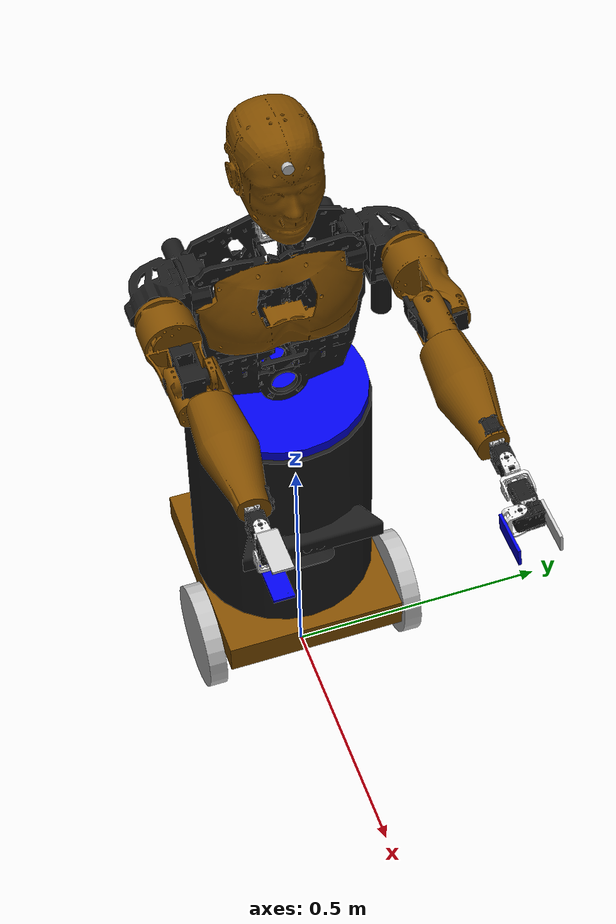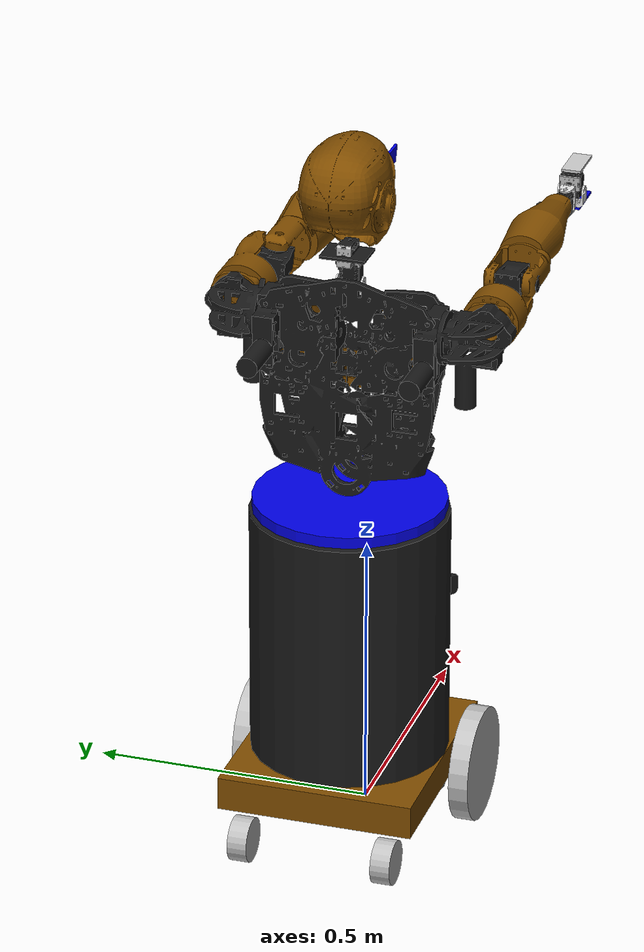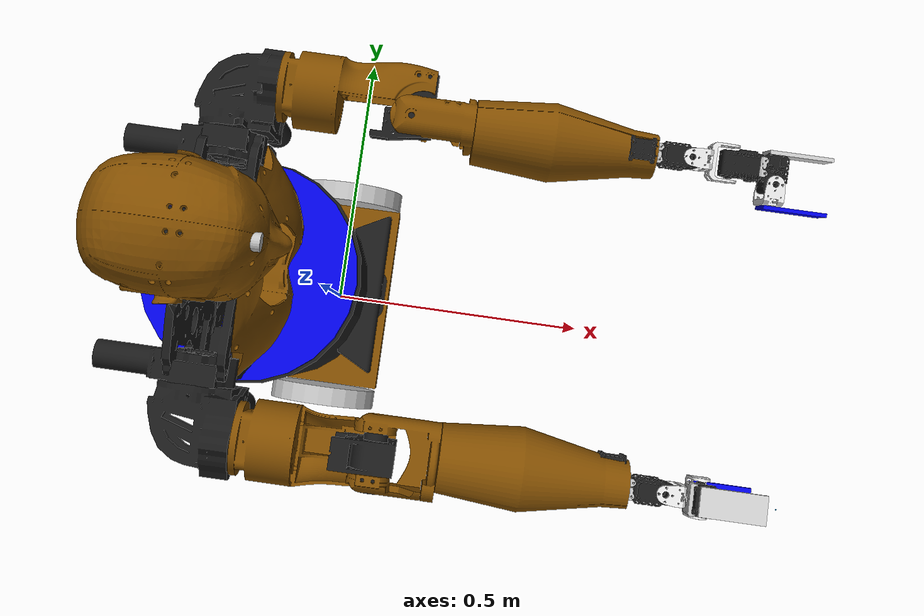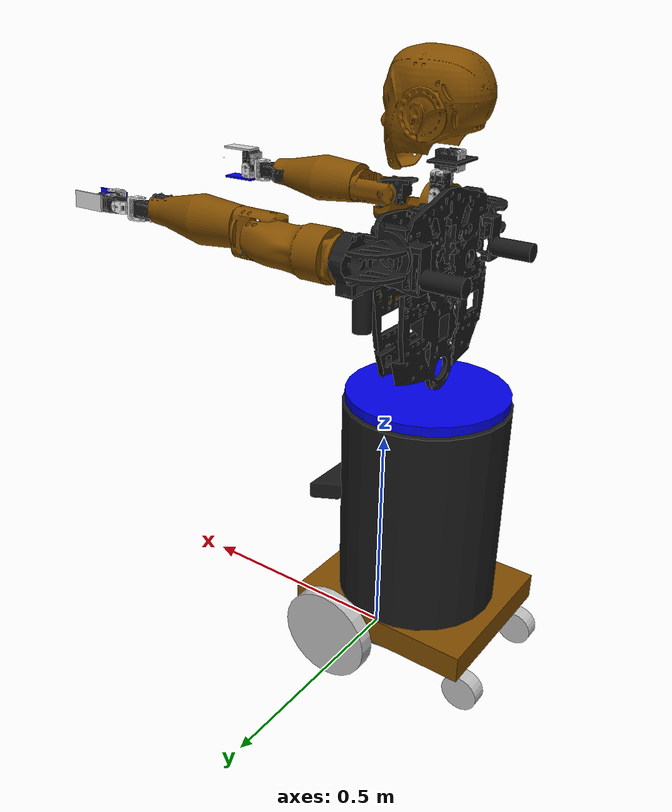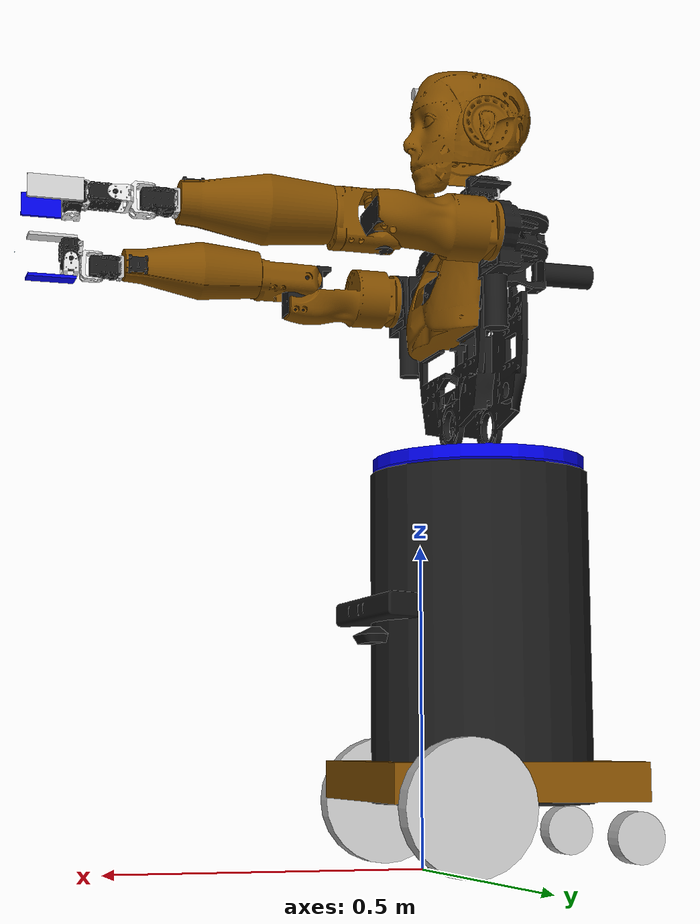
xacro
<?xml version="1.0"?>

<!-- XML namespaces -->
<robot xmlns:sensor="http://playerstage.sourceforge.net/gazebo/xmlschema/#sensor"
       xmlns:controller="http://playerstage.sourceforge.net/gazebo/xmlschema/#controller"
       xmlns:interface="http://playerstage.sourceforge.net/gazebo/xmlschema/#interface"
       xmlns:xacro="http://ros.org/wiki/xacro"

	   name="robbie">

    <property name="M_PI" value="3.14159"/>
    <property name="M_SCALE" value="0.001"/>
    <property name="MESH_EXT" value="stl"/>
    <xacro:include filename="$(find robbie_description)/urdf/robbie_hardware.xacro" />

<xacro:my_box name="base_link" lwh="0.41 0.35 0.06" xyz="0 0 .135" rpy="0 0 0" mass="0.1" material="Gazebo/FlatBlack">
	        <xacro:gold />
        </xacro:my_box>

 <link name="base_footprint">
      <visual>
        <origin xyz="0 0 0" rpy="0 0 0" />
        <geometry>
          <box size="0.05 0.05 0.001" />
        </geometry>
        <material name="TransparentGreen" />
      </visual>
  </link>

  <xacro:my_cylinder name="left_wheel" l="0.035" r="0.1025" xyz="0 0 0" rpy="1.57 0 0" mass="0.1" material="Gazebo/Grey">
		<xacro:grey1 />
	</xacro:my_cylinder>

  <xacro:my_cylinder name="right_wheel" l="0.035" r="0.1025" xyz="0 0 0" rpy="1.57 0 0" mass="0.1" material="Gazebo/Grey">
		<xacro:grey1 />
	</xacro:my_cylinder>

  <xacro:my_cylinder name="castor_wheel_l" l="0.035" r="0.04" xyz="0 0 0" rpy="1.57 0 0" mass="0.1" material="Gazebo/Grey">
		<xacro:grey1 />
	</xacro:my_cylinder>

  <xacro:my_cylinder name="castor_wheel_r" l="0.035" r="0.04" xyz="0 0 0" rpy="1.57 0 0" mass="0.1" material="Gazebo/Grey">
		<xacro:grey1 />
	</xacro:my_cylinder>

  <xacro:my_cylinder name="deck_link" l="0.520" r="0.175" xyz="0.1 0 0" rpy="0 0 0" mass="0.2" material="Gazebo/grey">
			<xacro:black />
		</xacro:my_cylinder>

 <xacro:my_cylinder name="pan_link" l="0.02" r="0.17" xyz="0 0 0" rpy="0 0 0" mass="0.2" material="Gazebo/grey">
			<xacro:blue1 />
		</xacro:my_cylinder>

<!-- ##############################   upper torso   ##################333333-->

<link name="upper_torso" >
   <visual>
      <geometry>
        <mesh filename="package://robbie_description/meshes/chest.stl" scale="${M_SCALE} ${M_SCALE} ${M_SCALE}"/>
      </geometry>
         <xacro:black/>
      <origin rpy="0 0 -1.57" xyz="0 0 0"/>
    </visual>
  </link>

<link name="upper_chest" >
   <visual>
      <geometry>
        <mesh filename="package://robbie_description/meshes/chest_cover.stl" scale="${M_SCALE} ${M_SCALE} ${M_SCALE}"/>
      </geometry>
         <xacro:gold/>
      <origin rpy="0 0 1.57" xyz="0 0 0"/>
    </visual>
  </link>

<!-- ##############################   right arm ##################333333-->
<link name="right_shoulder_tilt" >
   <visual>
      <geometry>
        <mesh filename="package://robbie_description/meshes/right_shoulder_tilt_assy.stl" scale="${M_SCALE} ${M_SCALE} ${M_SCALE}"/>
      </geometry>
       <xacro:black />
      <origin rpy="0 0 1.57" xyz="0 -0.05 -0.05"/>
    </visual>
  </link>

<link name="right_shoulder_lift" >
   <visual>
      <geometry>
        <mesh filename="package://robbie_description/meshes/right_shoulder_assy.stl" scale="${M_SCALE} ${M_SCALE} ${M_SCALE}"/>
      </geometry>
       <xacro:black />
      <origin rpy="0 0 1.57" xyz="-0.025 0 0.01"/>
    </visual>
  </link>

<link name="right_elbow_link" >
   <visual>
      <geometry>
        <mesh filename="package://robbie_description/meshes/gearbox.stl" scale="${M_SCALE} ${M_SCALE} ${M_SCALE}"/>
      </geometry>
       <xacro:black/>
      <origin rpy="0 1.57 0" xyz="0 0 0"/>
    </visual>
  </link>

  <link name="right_shoulder_rotate" >
   <visual>
      <geometry>
        <mesh filename="package://robbie_description/meshes/right_upper_arm.stl" scale="${M_SCALE} ${M_SCALE} ${M_SCALE}"/>
      </geometry>
       <xacro:gold/>
      <origin rpy="0 3.14 0" xyz="0 0 0"/>
    </visual>
  </link>

  <link name="right_elbow" >
   <visual>
      <geometry>
        <mesh filename="package://robbie_description/meshes/elbow_pivot.stl" scale="${M_SCALE} ${M_SCALE} ${M_SCALE}"/>
      </geometry>
       <xacro:gold />
      <origin rpy="3.14 0 0" xyz="0.025 -0.05 0.03"/>
    </visual>
  </link>

 <link name="right_forearm_link">
    <visual>
      <geometry>
        <mesh filename="package://robbie_description/meshes/fore_arm.stl" scale="${M_SCALE} ${M_SCALE} ${M_SCALE}"/>
      </geometry>
        <xacro:gold />
      <origin rpy="0 -1.57 0" xyz="0 0 0"/>
    </visual></link>

  <!-- wrist_pan_ joint-->
  <xacro:ax12 name="wrist_pan_servo" xyz="0 0 0" rpy="0 0 0" />
  <xacro:F3_bracket name="wrist_pan_servo_bracket_f3" xyz="0 0.005 0" rpy="1.57 0 0" />

  <!-- wrist_tilt joint-->
  <xacro:ax12 name="wrist_tilt_servo" xyz="-0.04 0.05 0" rpy="-1.57 0 0" />
  <xacro:F2_bracket name="wrist_tilt_bracket_f2" xyz="0 0 0" rpy="0 1.57 0" /><!--here-->

 <xacro:F3_bracket name="gripper_bracket_f3" xyz="0 0 0" rpy="1.57 1.57 0" />

<!-- Gripper_joint-->
  <xacro:ax12 name="gripper_servo" xyz="0 0 0" rpy="1.57 0 0" />
  <xacro:F2_bracket name="gripper_bracket_f2" xyz="0 0 0" rpy="0 0 1.57" />

  <xacro:my_box name="right_finger_link" lwh="-0.08 0.005 0.035" xyz="0 0 0" rpy="1.57 0 1.57" mass="0.1" material="Gazebo/FlatBlack">
	        <xacro:blue1 />
        </xacro:my_box>

  <xacro:my_box name="left_finger_link" lwh="0.08 0.005 0.035" xyz="0 0 0" rpy="1.57 0 1.57" mass="0.1" material="Gazebo/FlatBlack">
	        <xacro:grey3/>
        </xacro:my_box>

<!-- ##############################   left arm ##################333333-->
<link name="left_shoulder_tilt" >
   <visual>
      <geometry>
        <mesh filename="package://robbie_description/meshes/left_shoulder_tilt_assy.stl" scale="${M_SCALE} ${M_SCALE} ${M_SCALE}"/>
      </geometry>
       <xacro:black />
      <origin rpy="0 0 1.57" xyz="0 0.0 -0.0"/>
    </visual>
  </link>

  <link name="left_shoulder_lift" >
   <visual>
      <geometry>
        <mesh filename="package://robbie_description/meshes/left_shoulder_assy.stl" scale="${M_SCALE} ${M_SCALE} ${M_SCALE}"/>
      </geometry>
       <xacro:black />
      <origin rpy="0 0 1.57" xyz="0 0 0"/>
    </visual>
  </link>

<link name="left_shoulder_rotate" >
   <visual>
      <geometry>
        <mesh filename="package://robbie_description/meshes/right_upper_arm.stl" scale="${M_SCALE} ${M_SCALE} ${M_SCALE}"/>
      </geometry>
       <xacro:gold/>
      <origin rpy="0 3.14 0" xyz="0 0 0"/>
    </visual>
  </link>

<link name="left_elbow_link" >
   <visual>
      <geometry>
        <mesh filename="package://robbie_description/meshes/gearbox.stl" scale="${M_SCALE} ${M_SCALE} ${M_SCALE}"/>
      </geometry>
       <xacro:black/>
      <origin rpy="0 1.57 0" xyz="0 0 0"/>
    </visual>
  </link>

<link name="left_elbow" >
   <visual>
      <geometry>
        <mesh filename="package://robbie_description/meshes/elbow_pivot.stl" scale="${M_SCALE} ${M_SCALE} ${M_SCALE}"/>
      </geometry>
       <xacro:gold />
      <origin rpy="3.14 0 0" xyz="0.025 -0.05 0.03"/>
    </visual>
  </link>

 <link name="left_forearm_link">
    <visual>
      <geometry>
        <mesh filename="package://robbie_description/meshes/fore_arm.stl" scale="${M_SCALE} ${M_SCALE} ${M_SCALE}"/>
      </geometry>
        <xacro:gold />
      <origin rpy="0 -1.57 0" xyz="0 0 0"/>
    </visual>
  </link>

 <!-- left_wrist_pan_ joint-->
  <xacro:ax12 name="left_wrist_pan_servo" xyz="0 0 0" rpy="0 0 0" />
  <xacro:F3_bracket name="left_wrist_pan_servo_bracket_f3" xyz="0 0.005 0" rpy="1.57 0 0" />

 <!-- left_wrist_yaw joint-->
  <xacro:ax12 name="left_wrist_yaw_servo" xyz="-0.04 0.05 0" rpy="-1.57 0 0" />
  <xacro:F2_bracket name="left_wrist_yaw_bracket_f2" xyz="0 0 0" rpy="-1.57 0 0" />

  <!-- left_wrist_tilt joint-->
  <xacro:ax12 name="left_wrist_tilt_servo" xyz="0 0 0" rpy="1.57 1.57 0" />
  <xacro:F2_bracket name="left_wrist_tilt_bracket_f2" xyz="0 0 0" rpy="1.57 1.57 0" />

 <xacro:F3_bracket name="left_gripper_bracket_f3" xyz="0 0 0" rpy="1.57 1.57 0" />

<!-- left_Gripper_joint-->
  <xacro:ax12 name="left_gripper_servo" xyz="0 0 0" rpy="0 0 -1.57" />
  <xacro:F2_bracket name="left_gripper_bracket_f2" xyz="0 0 0" rpy="0 0 1.57" />

  <xacro:my_box name="left_right_finger_link" lwh="-0.08 0.005 0.035" xyz="0 0 0" rpy="1.57 0 1.57" mass="0.1" material="Gazebo/FlatBlack">
	        <xacro:blue1 />
        </xacro:my_box>

  <xacro:my_box name="left_left_finger_link" lwh="0.08 0.005 0.035" xyz="0 0 0" rpy="1.57 0 1.57" mass="0.1" material="Gazebo/FlatBlack">
	        <xacro:grey3/>
        </xacro:my_box>

<!-- head details-->
  <xacro:F2_bracket name="head_tilt_bracket" xyz="0 0 0" rpy="0 3.1415 0"/>

  <xacro:ax12 name="head_tilt_link" xyz="0 0 0" rpy="3.1415 0 0">
	</xacro:ax12>

  <xacro:F3_bracket name="head_pan_bracket" xyz="0 0 0" rpy="0 0 0"/>

  <xacro:ax12 name="head_pan_link" xyz="0 0 0" rpy=" 1.57 0 1.57">
	</xacro:ax12>

  <xacro:F3_bracket name="neck_link" xyz="0 0 0" rpy="1.57 0 -1.570" />

  <xacro:my_box name="head_base_link" lwh="0.06 0.08 0.005" xyz="0 0 0" rpy="0 0 0" mass="0.1" material="Gazebo/FlatBlack">
		<xacro:black />
	</xacro:my_box>

  <link name="head_link" >
   <visual>
      <geometry>
        <mesh filename="package://robbie_description/meshes/head.stl" scale="${M_SCALE} ${M_SCALE} ${M_SCALE}"/>
      </geometry>
         <material name="gold">
	  <color rgba="0.5 0.3 0 1.0"/>
	</material>
      <origin rpy="1.57 0 1.57" xyz="0 0 0"/>
    </visual>
  </link>

  <link name="head_link_fake">
      <inertial>
        <mass value="0.0001" />
        <origin xyz="0 0 0" />
        <inertia ixx="0.0001" ixy="0.0" ixz="0.0"
                 iyy="0.0001" iyz="0.0"
                 izz="0.0001" />
      </inertial>
    </link>

   <link name="kinect_link">
      <inertial>
        <mass value="1.0" />
        <origin xyz="0 0 0" />
        <inertia ixx="1.0" ixy="0.0" ixz="0.0"
                 iyy="1.0" iyz="0.0"
                 izz="1.0" />
      </inertial>

      <visual>
        <origin xyz=" 0 0 0 " rpy="0 0 0" />
        <geometry>
          <mesh filename="package://robbie_description/meshes/kinect.stl" scale="${M_SCALE} ${M_SCALE} ${M_SCALE}"/>
        </geometry>
        <xacro:ax12_color />
      </visual>

      <collision>
        <origin xyz="0 0 0" rpy="0 0 0" />
        <geometry>
          <mesh filename="package://robbie_description/meshes/kinect.stl" scale="${M_SCALE} ${M_SCALE} ${M_SCALE}"/>
          </geometry>
      </collision>

    </link>

    <xacro:my_cylinder name="camera_link" l="0.035" r="0.01" xyz="0 0 0" rpy="0 1.57 0" mass="0.1" material="Gazebo/Grey">
      <xacro:grey1 />
	</xacro:my_cylinder>

<!-- virtal joints-->
<link name="right_gripper_link">
    <visual>
      <origin rpy="0 0 0" xyz="0.05 0 0"/>
      <geometry>
        <box size="0.001 0.001 0.001"/>
      </geometry>
    </visual>
    <collision>
      <origin rpy="0 0 0" xyz="0.05 0 0"/>
      <geometry>
        <box size="0.001 0.001 0.001"/>
      </geometry>
    </collision>
  </link>
<link name="left_gripper_link">
    <visual>
      <origin rpy="0 0 0" xyz="-0.05 0 0"/>
      <geometry>
        <box size="0.001 0.001 0.001"/>
      </geometry>
    </visual>
    <collision>
      <origin rpy="0 0 0" xyz="-0.05 0 0"/>
      <geometry>
        <box size="0.001 0.001 0.001"/>
      </geometry>
    </collision>
  </link>

<!-- ##############################   joints ##################333333-->
<joint name="base_footprint_joint" type="fixed">
    	<parent link="base_footprint" />
    	<child link="base_link" />
    	<origin xyz="-0.1 0 0" rpy="0 0 0" />
	</joint>

<joint name="base_link_joint" type="fixed">
    	<parent link="base_link" />
    	<child link="deck_link" />
    	<origin xyz="-0.1 0 .36" rpy="0 0 0" />
	</joint>

  <joint name="left_wheel_joint" type="fixed">
    	<parent link="base_link" />
    	<child link="left_wheel" />
    	<origin xyz="0.1 -0.2 0.1" rpy="0 0 0" />
	</joint>

  <joint name="right_wheel_joint" type="fixed">
    	<parent link="base_link" />
    	<child link="right_wheel" />
    	<origin xyz="0.1 0.2 0.1" rpy="0 0 0" />
	</joint>

  <joint name="castor_wheel_joint_l" type="fixed">
    	<parent link="base_link" />
    	<child link="castor_wheel_l" />
    	<origin xyz="-0.20 -0.13 0.05" rpy="0 0 0" />
	</joint>

  <joint name="castor_wheel_joint_r" type="fixed">
    	<parent link="base_link" />
    	<child link="castor_wheel_r" />
    	<origin xyz="-0.20 0.13 0.05" rpy="0 0 0" />
	</joint>
<!--#################  Upper torso#############################-->
 <joint name="pan_joint" type="revolute">
    	<parent link="deck_link" />
    	<child link="pan_link" />
    	<origin xyz="0.1 0 0.275" rpy="0 0 0" />
        <axis xyz="0 0 1" />
        <limit lower="-1" upper="1" effort="10" velocity="0" />
	</joint>

  <joint name="torso_link" type="fixed">
    	<parent link="pan_link" />
    	<child link="upper_torso" />
    	<origin xyz="0.05 0 0.26" rpy="0 0 0" />
	</joint>

<joint name="chest_link" type="fixed">
    	<parent link="upper_torso" />
    	<child link="upper_chest" />
    	<origin xyz="0.02 0 0.03" rpy="0 0 0" />
	</joint>

<joint name="right_arm_tilt_joint" type="revolute">
    	<parent link="upper_torso" />
    	<child link="right_shoulder_tilt" />
    	<origin xyz="-0.045 -0.145 0.105" rpy="0 0 0" />
        <axis xyz="1 0 0" />
        <limit lower="-1.34" upper="0.1" effort="10" velocity="0" />
	</joint>

<joint name="right_arm_lift_joint" type="revolute">
    	<parent link="right_shoulder_tilt" />
    	<child link="right_shoulder_lift" />
    	<origin xyz="-0.0 -0.077 -0.04" rpy="0 -1.57 0" />
        <axis xyz="0 1 0" />
        <limit lower="-1.57" upper="1.57" effort="10" velocity="0" />
	</joint>

<joint name="right_arm_rotate_joint" type="revolute">
    	<parent link="right_shoulder_lift" />
    	<child link="right_shoulder_rotate" />
    	<origin xyz="0 0 -0.065" rpy="0 0 0" />
        <axis xyz="0 0 -1" />
        <limit lower="-3.14" upper="0.2" effort="10" velocity="0" />
	</joint>

<joint name="right_elbow_link" type="fixed">
    	<parent link="right_shoulder_rotate" />
    	<child link="right_elbow_link" />
    	<origin xyz="0.01 0 -0.17" rpy="0 0 0" />
        </joint>

<joint name="right_arm_elbow_joint" type="revolute">
    <parent link="right_elbow_link"/>
    <child link="right_elbow"/>
    <origin xyz="0.01 0.01 0.0" rpy="0 -1.57 0" />
    <axis xyz="0 1 0" />
   <limit lower="-2.20" upper="0.1" effort="10" velocity="0" />
  </joint>

  <joint name="right_arm_forearm_link" type="fixed">
    <parent link="right_elbow"/>
    <child link="right_forearm_link"/>
    <origin xyz="-0.08 -0.0 -0.0" rpy="1.57 0 0" />
  </joint>

  <!--right_arm_wrist_pan_joint-->
  <joint name="right_arm_wrist_pan_bracket" type="fixed">
    	<parent link="right_forearm_link" />
    	<child link="wrist_pan_servo" />
    	<origin xyz="-0.21 0.0 0.0" rpy="0 0 1.57" />

	</joint>
  <joint name="right_arm_wrist_pan_joint" type="revolute">
    	<parent link="wrist_pan_servo" />
    	<child link="wrist_pan_servo_bracket_f3" />
    	<origin xyz="0. 0.015 0.0" rpy="0 1.57 0" />
        <axis xyz="0 1 0" />
    	<limit lower="-2.61" upper="2.61" effort="10" velocity="0" />
      	<dynamics damping="0.0"/>
	</joint>

   <joint name="right_arm_wrist_tilt_bracket" type="fixed">
    	<parent link="wrist_pan_servo_bracket_f3" />
    	<child link="wrist_tilt_servo" />
    	<origin xyz="0.04 0 0.0" rpy="0 0 0" />
        <axis xyz="1 0 0" />

	</joint>

<!--wrist_tilt_joint-->
  <joint name="right_arm_wrist_yaw_joint" type="revolute">
    	<parent link="wrist_tilt_servo" />
    	<child link="wrist_tilt_bracket_f2" />
    	<origin xyz="-0.04 0.05 0" rpy="-1.57 0 1.57" />
        <axis xyz="0 1 0" />
    	<limit lower="-1.57" upper="1.57" effort="10" velocity="0" />
      	<dynamics damping="0.0"/>
	</joint>

  <joint name="right_arm_gripper_bracket" type="fixed">
    	<parent link="wrist_tilt_bracket_f2" />
    	<child link="gripper_bracket_f3" />
    	<origin xyz="0.025 0.025 0.0" rpy="1.57 1.57 0" /><!--now-->
	</joint>

   <joint name="right_arm_gripper_servo" type="fixed">
    	<parent link="gripper_bracket_f3" />
    	<child link="gripper_servo" />
    	<origin xyz="0.0 0.02 0.02" rpy="-1.57 0 1.57" />
	</joint>

  <joint name="right_gripper_joint" type="fixed">
    <origin rpy="-1.570795 0 1.570795" xyz="0 0.06 0.01"/>
    <parent link="gripper_bracket_f3"/>
    <child link="right_gripper_link"/>
  </joint>

<!-- gripper_joint-->
   <joint name="right_arm_gripper_joint" type="revolute">
    	<parent link="gripper_servo" />
    	<child link="gripper_bracket_f2" />
    	<origin xyz="0 0.0 0.0" rpy="0 1.57 -1.57" />
        <axis xyz="1 0 0" />
    	<limit lower="-0.36" upper="0.28" effort="10" velocity="0" />
      	<dynamics damping="0.0"/>
	</joint>

  <joint name="right_arm_finger_link_l" type="fixed">
    	<parent link="gripper_servo" />
    	<child link="left_finger_link" />
    	<origin xyz="0.03 0.04 0.0" rpy="0 1.57 -1.57" />

	</joint>
<!-- moving finger   ############-->
  <joint name="right_arm_finger_link_r" type="fixed">
    	<parent link="gripper_bracket_f2" />
    	<child link="right_finger_link" />
    	<origin xyz="0 0.03 0.03" rpy="0 0 0" />
	</joint>

<!--##########################        left arm             #############################-->
<joint name="left_arm_tilt_joint" type="revolute">
    	<parent link="upper_torso" />
    	<child link="left_shoulder_tilt" />
    	<origin xyz="-0.045 0.145 0.105" rpy="0 0 0" />
        <axis xyz="-1 0 0" />
        <limit lower="-1.34" upper="0.1" effort="10" velocity="0" />
	</joint>

<joint name="left_arm_lift_joint" type="revolute">
    	<parent link="left_shoulder_tilt" />
    	<child link="left_shoulder_lift" />
    	<origin xyz="0 0.02 -0.04" rpy="0 -1.57 0" />
        <axis xyz="0 1 0" />
        <limit lower="-1.57" upper="1.57" effort="10" velocity="0" />
	</joint>

<joint name="left_arm_rotate_joint" type="revolute">
    	<parent link="left_shoulder_lift" />
    	<child link="left_shoulder_rotate" />
    	<origin xyz="0 0.06 -0.055" rpy="0 0 0" />
        <axis xyz="0 0 -1" />
        <limit lower="0.2" upper="3.14" effort="10" velocity="0" />
	</joint>

<joint name="left_elbow_link" type="fixed">
    	<parent link="left_shoulder_rotate" />
    	<child link="left_elbow_link" />
    	<origin xyz="0.01 0 -0.17" rpy="0 0 0" />
	</joint>

<joint name="left_arm_elbow_joint" type="revolute">
    <parent link="left_elbow_link"/>
    <child link="left_elbow"/>
    <origin xyz="0.01 0.01 0.0" rpy="0 -1.57 0" />
    <axis xyz="0 1 0" />
   <limit lower="-2.20" upper="0.17" effort="10" velocity="0" />
  </joint>

 <joint name="left_arm_forearm_link" type="fixed">
    <parent link="left_elbow"/>
    <child link="left_forearm_link"/>
    <origin xyz="-0.08 -0.0 -0.0" rpy="1.57 0 0" />
  </joint>

    <!--left_arm_wrist_pan_joint-->
  <joint name="left_arm_wrist_pan_bracket" type="fixed">
    	<parent link="left_forearm_link" />
    	<child link="left_wrist_pan_servo" />
    	<origin xyz="-0.21 0.0 0.0" rpy="0 0 1.57" /><!--now-->

	</joint>
  <joint name="left_arm_wrist_pan_joint" type="revolute"> <!--revolute-->
    	<parent link="left_wrist_pan_servo" />
    	<child link="left_wrist_pan_servo_bracket_f3" />
    	<origin xyz="0. 0.015 0.0" rpy="0 0 0" />
        <axis xyz="0 1 0" />
    	<limit lower="-2.61" upper="2.61" effort="10" velocity="0" />
      	<dynamics damping="0.0"/>
	</joint>

   <joint name="left_arm_wrist_tilt_bracket" type="fixed">
    	<parent link="left_wrist_pan_servo_bracket_f3" />
    	<child link="left_wrist_yaw_servo" />
    	<origin xyz="0.04 0 0.0" rpy="0 0 0" />
        <axis xyz="1 0 0" />

	</joint>

<!--wrist_yaw_joint-->
  <joint name="left_arm_wrist_yaw_joint" type="revolute"> <!--revolute-->
    	<parent link="left_wrist_yaw_servo" />
    	<child link="left_wrist_yaw_bracket_f2" />
    	<origin xyz="-0.04 0.05 0" rpy="0 0 0" />
        <axis xyz="0 0 -1" />
    	<limit lower="-1.57" upper="1.57" effort="10" velocity="0" />
      	<dynamics damping="0.0"/>
	</joint>

  <joint name="left_arm_wrist_yaw_bracket" type="fixed">
    	<parent link="left_wrist_yaw_bracket_f2" />
    	<child link="left_wrist_tilt_bracket_f2" />
    	<origin xyz="-0.0 0.052 0.0" rpy="0 0 0" />
        <axis xyz="1 0 0" />
    	<limit lower="-1.57" upper="1.57" effort="10" velocity="0" />
      	<dynamics damping="0.0"/>
        </joint>

  <!--wrist_tilt_joint-->
  <joint name="left_arm_wrist_tilt_joint" type="revolute"> <!--revolute-->
    	<parent link="left_wrist_tilt_bracket_f2" />
    	<child link="left_wrist_tilt_servo" />
    	<origin xyz="-0 -0.0 0" rpy="0 0 0" />
        <axis xyz="1 0 0" />
    	<limit lower="-1.57" upper="1.57" effort="10" velocity="0" />
      	<dynamics damping="0.0"/>
	</joint>

  <joint name="left_arm_gripper_bracket" type="fixed">
    	<parent link="left_wrist_tilt_servo" />
    	<child link="left_gripper_bracket_f3" />
    	<origin xyz="0.0 0.035 0.0" rpy="0 1.57 0" />
	</joint>

   <joint name="left_arm_gripper_servo" type="fixed">
    	<parent link="left_gripper_bracket_f3" />
    	<child link="left_gripper_servo" />
    	<origin xyz="0.0 0.02 -0.02" rpy="0 3.14 0" />
	</joint>

  <joint name="left_gripper_joint" type="fixed">
    <origin rpy="1.570795 0 1.570795" xyz="0 0.06 -0.01"/>
    <parent link="left_gripper_bracket_f3"/>
    <child link="left_gripper_link"/>
  </joint>

  <!-- left gripper_joint-->
   <joint name="left_arm_gripper_joint" type="revolute"> <!--revolute-->
    	<parent link="left_gripper_servo" />
    	<child link="left_gripper_bracket_f2" />
    	<origin xyz="0 0.0 0.0" rpy="0 0 0" />
        <axis xyz="1 0 0" />
    	<limit lower="-1.0" upper="0.3" effort="10" velocity="0" />
      	<dynamics damping="0.0"/>
	</joint>

  <joint name="left_arm_finger_link_l" type="fixed">
    	<parent link="left_gripper_servo" />
    	<child link="left_left_finger_link" />
    	<origin xyz="0. 0.03 -0.04" rpy="0 0 0" />

	</joint>

  <joint name="left_arm_finger_link_r" type="fixed">
    	<parent link="left_gripper_bracket_f2" />
    	<child link="left_right_finger_link" />
    	<origin xyz="0 0.03 0.03" rpy="0 0 0" />
	</joint>

<!-- #####################################Head joints#########################################-->
  <joint name="head_tilt_servo" type="fixed">
    	<parent link="upper_torso" />
    	<child link="head_tilt_bracket" />
    	<origin xyz="-0.05 0. 0.15" rpy="0 0 0" />
	</joint>
<!-- Head tilt joint-->
  <joint name="head_tilt_mod_joint" type="revolute">
    	<parent link="head_tilt_bracket" />
    	<child link="head_tilt_link" />
    	<origin xyz="0 0 0.0" rpy="0 0 0" />
    	<axis xyz="0 1 0" />
    	<limit lower="-2.6" upper="2.6" effort="10" velocity="0" />
      	<dynamics damping="0.0"/>
	</joint>

<!-- Head tilt joint fake-->
  <joint name="head_tilt_joint" type="fixed">
    	<parent link="head_tilt_bracket" />
    	<child link="head_link_fake" />
    	<origin xyz="0 0 0.0" rpy="0 0 0" />
    	<axis xyz="0 1 0" />
    	<limit lower="-2.6" upper="2.6" effort="10" velocity="0" />
      	<dynamics damping="0.0"/>
	</joint>

  <joint name="head_pan_servo" type="fixed">
    	<parent link="head_tilt_link" />
    	<child link="head_pan_bracket" />
    	<origin xyz="-0.0 0 0.04" rpy="0 0 0" />
	</joint>

  <!-- head_pan_joint-->
	<joint name="head_pan_joint" type="revolute">
    	<parent link="head_pan_bracket" />
    	<child link="head_pan_link" />
    	<origin xyz="0.0 0 0.02" rpy="0 0 0" />
        <origin xyz="0 0 0.0" rpy="0 0 0" />
    	<axis xyz="0 0 1" />
    	<limit lower="-2" upper="2" effort="10" velocity="0" />
      	<dynamics damping="0.0"/>
	</joint>

  <joint name="head_neck_link" type="fixed">
    	<parent link="head_pan_link" />
    	<child link="neck_link" />
    	<origin xyz="-0.04 0 0.0" rpy="0 0 0" />
	</joint>

  <joint name="neck_joint" type="fixed">
    	<parent link="neck_link" />
    	<child link="head_base_link" />
    	<origin xyz="0.02 0 0.0" rpy="0 0 0" />
	</joint>

  <joint name="head_joint" type="fixed">
    	<parent link="head_base_link" />
    	<child link="head_link" />
    	<origin xyz="-0.02 -0.097 -0.45" rpy="0 0 0" />
	</joint>

   <joint name="camera_link" type="fixed">
    	<parent link="head_link" />
    	<child link="camera_link" />
    	<origin xyz="0.13 0.1 0.6" rpy="0 0 0" />
	</joint>

  <joint name="kinect_joint" type="fixed">
    	<parent link="base_link" />
    	<child link="kinect_link" />
    	<origin xyz="0.2 0 0.4" rpy="0 0 0" />
	</joint>

  <joint name="kinect_depth_joint" type="fixed">
      <origin xyz="0 0.018 0" rpy="0 0 0" />
      <parent link="kinect_link" />
      <child link="kinect_depth_frame" />
    </joint>

    <link name="kinect_depth_frame">
      <inertial>
        <mass value="0.0001" />
        <origin xyz="0 0 0" />
        <inertia ixx="0.0001" ixy="0.0" ixz="0.0"
                 iyy="0.0001" iyz="0.0"
                 izz="0.0001" />
      </inertial>
    </link>

    <joint name="kinect_depth_optical_joint" type="fixed">
      <origin xyz="0 0 0" rpy="${-M_PI/2} 0 ${-M_PI/2}" />
      <parent link="kinect_link" />
      <child link="kinect_depth_optical_frame" />
    </joint>

    <link name="kinect_depth_optical_frame">
      <inertial>
        <mass value="0.0001" />
        <origin xyz="0 0 0" />
        <inertia ixx="0.0001" ixy="0.0" ixz="0.0"
                 iyy="0.0001" iyz="0.0"
                 izz="0.0001" />
      </inertial>
    </link>

    <joint name="kinect_rgb_optical_joint" type="fixed">
      <origin xyz="0 0 0" rpy="${-M_PI/2} 0 ${-M_PI/2}" />
      <parent link="kinect_depth_optical_frame" />
      <child link="kinect_rgb_optical_frame" />
    </joint>
    <link name="kinect_rgb_optical_frame">
      <inertial>
        <mass value="0.001" />
        <origin xyz="0 0 0" />
        <inertia ixx="0.0001" ixy="0.0" ixz="0.0"
                 iyy="0.0001" iyz="0.0"
                 izz="0.0001" />
      </inertial>
    </link>

<gazebo reference="robbie">
  	</gazebo>
</robot>

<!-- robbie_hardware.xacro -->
<robot name="hector_base" xmlns:xacro="http://ros.org/wiki/xacro">

  <!-- ============================  A Few Color Macros  ============================ -->

	<xacro:macro name="black">
		<material name="black">
			<color rgba="0.1 0.1 0.1 1.0"/>
		</material>
	</xacro:macro>

	<xacro:macro name="white">
		<material name="white">
			<color rgba="1.0 1.0 1.0 1.0"/>
		</material>
	</xacro:macro>

	<xacro:macro name="grey1">
		<material name="grey1">
			<color rgba="0.75 0.75 0.75 1.0"/>
		</material>
	</xacro:macro>

	<xacro:macro name="grey2">
		<material name="grey2">
			<color rgba="0.6 0.6 0.6 1.0"/>
		</material>
	</xacro:macro>

	<xacro:macro name="grey3">
		<material name="grey3">
			<color rgba="0.8 0.8 0.8 1.0"/>
		</material>
	</xacro:macro>

	<xacro:macro name="ax12_color">
		<material name="ax12_color">
			<color rgba="0.2 0.2 0.2 1.0"/>
		</material>
	</xacro:macro>

	<xacro:macro name="bracket_color">
		<material name="bracket_color">
			<color rgba="0.9 0.9 0.9 1.0"/>
		</material>
	</xacro:macro>

        <xacro:macro name="cyan1">
		<material name="cyan1">
			<color rgba="0 0.9 0.9 1.0"/>
		</material>
	</xacro:macro>

	<xacro:macro name="cyan2">
		<material name="cyan2">
	     <color rgba="0 0.7 0.7 1.0"/>
		</material>
	</xacro:macro>

	<xacro:macro name="cyan3">
		<material name="cyan3">
	     <color rgba="0 0.5 0.5 1.0"/>
		</material>
	</xacro:macro>

        <xacro:macro name="yellow2">
		<material name="yellow2">
			<color rgba="0.8 0.9 0 1.0"/>
		</material>
	</xacro:macro>

        <xacro:macro name="gold">
		<material name="gold">
			<color rgba="0.5 0.3 0 1.0"/>
		</material>
	</xacro:macro>

	<xacro:macro name="green1">
		<material name="green1">
			<color rgba="0 1 0 1.0"/>
		</material>
	</xacro:macro>

	<xacro:macro name="green2">
		<material name="green2">
			<color rgba="0.1 0.8 0 1.0"/>
		</material>
	</xacro:macro>

        <xacro:macro name="blue1">
		<material name="blue1">
			<color rgba="0 0 0.9 1.0"/>
		</material>
	</xacro:macro>

        <xacro:macro name="ax12_color">
		<material name="ax12_color">
			<color rgba="0.1 0.1 0.1 1.0"/>
		</material>
	</xacro:macro>

 	<!-- ============================   A Few Shape Macros  ============================ -->
	<xacro:macro name="ax12" params="name xyz rpy">
		<link name="${name}">
			<visual>
				<origin xyz="${xyz}" rpy="${rpy}" />
				<geometry>
					<mesh filename="package://robbie_description/meshes/ax12_box2.${MESH_EXT}" scale="${M_SCALE} ${M_SCALE} ${M_SCALE}"/>
				</geometry>
				<xacro:ax12_color />
             </visual>

             <collision>
				<origin xyz="${xyz}" rpy="${rpy}" />
				<geometry>

					<mesh filename="package://robbie_description/meshes/ax12_box2.${MESH_EXT}" scale="${M_SCALE} ${M_SCALE} ${M_SCALE}"/>

				</geometry>
             </collision>
             <xacro:default_inertial mass="0.055" />
        </link>
        <xacro:default_gazebo name="${name}" material="Gazebo/FlatBlack" />
	</xacro:macro>

	<xacro:macro name="F2_bracket" params="name xyz rpy">
		<link name="${name}">
			<visual>
				<origin xyz="${xyz}" rpy="${rpy}" />
				<geometry>
          			<mesh filename="package://robbie_description/meshes/F2.${MESH_EXT}" scale="${M_SCALE} ${M_SCALE} ${M_SCALE}"/>
				</geometry>
				<xacro:bracket_color />
             </visual>
             <collision>
				<origin xyz="${xyz}" rpy="${rpy}" />
					<geometry>

          				<mesh filename="package://robbie_description/meshes/F2.${MESH_EXT}" scale="${M_SCALE} ${M_SCALE} ${M_SCALE}"/>

					</geometry>
             </collision>
             <xacro:default_inertial mass="0.02" />
        </link>
        <xacro:default_gazebo name="${name}" material="Gazebo/WhiteEmissive" />
	</xacro:macro>

	<xacro:macro name="F3_bracket" params="name xyz rpy">
		<link name="${name}">
			<visual>
				<origin xyz="${xyz}" rpy="${rpy}" />
				<geometry>
          			<mesh filename="package://robbie_description/meshes/F3.${MESH_EXT}" scale="${M_SCALE} ${M_SCALE} ${M_SCALE}"/>
				</geometry><material name="grey1">
			<color rgba="0.75 0.75 0.75 1.0"/>
		</material>
				<xacro:bracket_color />
             </visual>
             <collision>
				<origin xyz="${xyz}" rpy="${rpy}" />
					<geometry>

          				<mesh filename="package://robbie_description/meshes/F3.${MESH_EXT}" scale="${M_SCALE} ${M_SCALE} ${M_SCALE}"/>

					</geometry>
             </collision>
             <xacro:default_inertial mass="0.01" />
        </link>
        <xacro:default_gazebo name="${name}" material="Gazebo/WhiteEmissive" />
	</xacro:macro>

	<xacro:macro name="bracket_f3" params="name xyz rpy">
		<link name="${name}">
			<visual>
				<origin xyz="${xyz}" rpy="${rpy}" />
				<geometry>
					<box size="0.025 0.04 0.006" />
				</geometry>
				<xacro:bracket_color />
             </visual>
             <collision>
				<origin xyz="${xyz}" rpy="${rpy}" />
					<geometry>
						<box size="0.025 0.04 0.006" />
					</geometry>
             </collision>
             <xacro:default_inertial mass="0.02" />
        </link>
        <xacro:default_gazebo name="${name}" material="Gazebo/WhiteEmissive" />
	</xacro:macro>

	<xacro:macro name="bracket2" params="name xyz rpy">
		<link name="${name}">
			<visual>
				<origin xyz="${xyz}" rpy="${rpy}" />
				<geometry>
					<box size="0.05 0.115 0.07" />
				</geometry>
				<xacro:bracket_color />
             </visual>
             <collision>
				<origin xyz="${xyz}" rpy="${rpy}" />
					<geometry>
					<box size="0.05 0.115 0.07" />
					</geometry>
             </collision>
             <xacro:default_inertial mass="0.01" />
        </link>
        <xacro:default_gazebo name="${name}" material="Gazebo/WhiteEmissive" />
	</xacro:macro>

        <xacro:macro name="bracket3" params="name xyz rpy">
		<link name="${name}">
			<visual>
				<origin xyz="${xyz}" rpy="${rpy}" />
				<geometry>
					<box size="0.05 0.032 0.005" />
				</geometry>
				<xacro:bracket_color />
             </visual>
             <collision>
				<origin xyz="${xyz}" rpy="${rpy}" />
					<geometry>
					<box size="0.05 0.032 0.005" />
					</geometry>
             </collision>
             <xacro:default_inertial mass="0.01" />
        </link>
        <xacro:default_gazebo name="${name}" material="Gazebo/WhiteEmissive" />
	</xacro:macro>

        <xacro:macro name="h_beam" params="name xyz rpy">
		<link name="${name}">
			<visual>
				<origin xyz="${xyz}" rpy="${rpy}" />
				<geometry>
					<box size="0.025 0.11 0.01" />
				</geometry>
				<xacro:bracket_color />
             </visual>
             <collision>
				<origin xyz="${xyz}" rpy="${rpy}" />
					<geometry>
					<box size="0.025 0.11 0.01" />
					</geometry>
             </collision>
             <xacro:default_inertial mass="0.01" />
        </link>
        <xacro:default_gazebo name="${name}" material="Gazebo/WhiteEmissive" />
	</xacro:macro>

        <xacro:macro name="my_box" params="name lwh xyz rpy mass material *rviz_color">
		<link name="${name}">
			<visual>
				<origin xyz="${xyz}" rpy="${rpy}" />
				<geometry>
					<box size="${lwh}" />
				</geometry>
			    <xacro:insert_block name="rviz_color" />
             </visual>
             <collision>
				<origin xyz="${xyz}" rpy="${rpy}" />
					<geometry>
						<box size="${lwh}" />
					</geometry>
             </collision>

        </link>
        <xacro:default_gazebo name="${name}" material="${material}" />
	</xacro:macro>

	<xacro:macro name="my_cylinder" params="name l r xyz rpy mass material *rviz_color">
		<link name="${name}">
			<visual>
				<origin xyz="${xyz}" rpy="${rpy}" />
				<geometry>
					<cylinder length="${l}" radius="${r}" />
				</geometry>
            	<xacro:insert_block name="rviz_color" />
            </visual>
            <collision>
				<origin xyz="${xyz}" rpy="${rpy}" />
					<geometry>
						<cylinder length="${l}" radius="${r}" />
					</geometry>
            </collision>
            <xacro:default_inertial mass="${mass}" />
        </link>
        <xacro:default_gazebo name="${name}" material="${material}" />
	</xacro:macro>

    <xacro:macro name="default_inertial" params="mass">
		<inertial>
			<mass value="${mass}" />
			<inertia ixx="0.001" ixy="0.0" ixz="0.0"
                     iyy="0.001" iyz="0.0"
                     izz="0.001" />
			</inertial>
    </xacro:macro>

    <xacro:macro name="default_gazebo" params="name material">
 		<gazebo reference="${name}">
			<material>${material}</material>
			<selfCollide>false</selfCollide>
			<turnGravityOff>true</turnGravityOff>
		</gazebo>
    </xacro:macro>

</robot>
